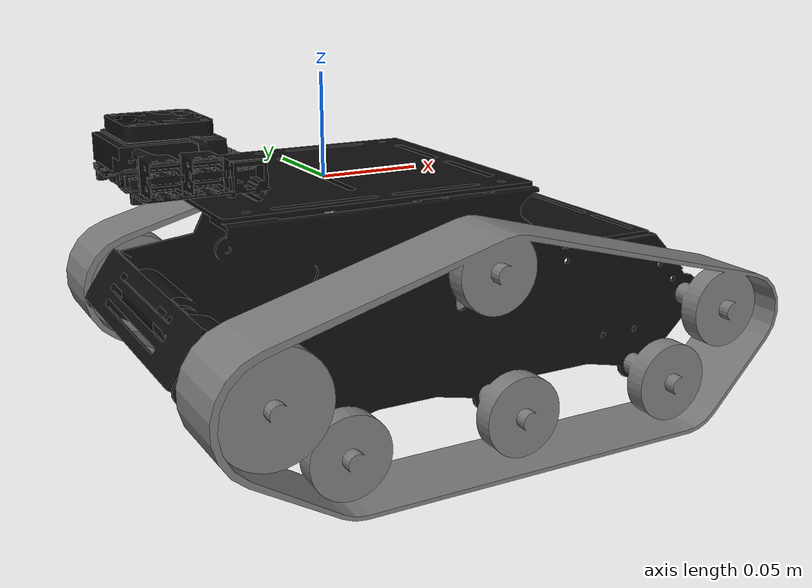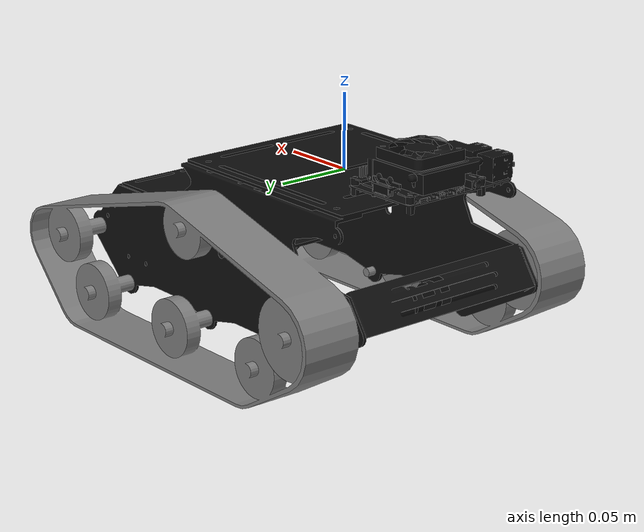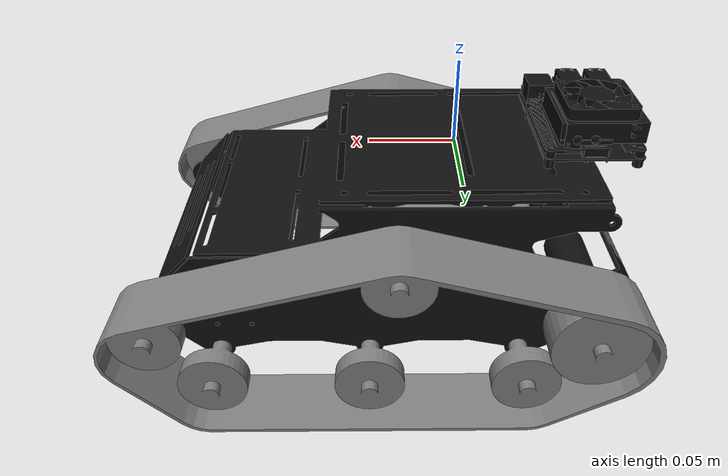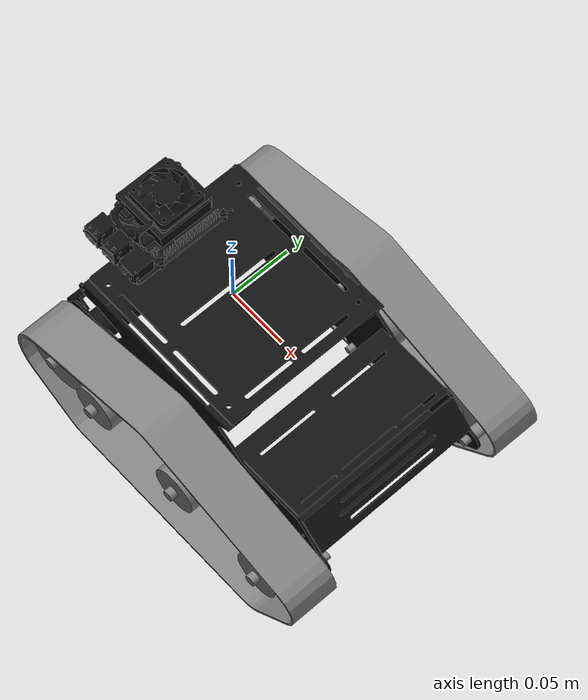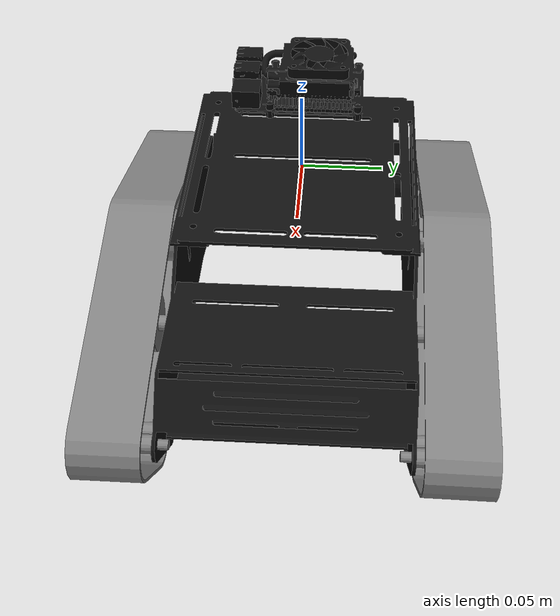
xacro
<?xml version="1.0"?>
<robot xmlns:xacro="http://www.ros.org/wiki/xacro">

    <xacro:property name="chassis_length" value="0.335" />
    <xacro:property name="chassis_width" value="0.265" />
    <xacro:property name="chassis_height" value="0.138" />
    <xacro:property name="chassis_mass" value="1.0" />
    <xacro:property name="wheel_radius" value="0.033" />
    <xacro:property name="wheel_thickness" value="0.026" />
    <xacro:property name="wheel_mass" value="0.05" />
    <xacro:property name="wheel_offset_x" value="0.226" />
    <xacro:property name="wheel_offset_y" value="0.1485" />
    <xacro:property name="wheel_offset_z" value="0.01" />
    <xacro:property name="caster_wheel_radius" value="0.01" />
    <xacro:property name="caster_wheel_mass" value="0.01" />
    <xacro:property name="caster_wheel_offset_x" value="0.075" />
    <xacro:property name="caster_wheel_offset_z"
        value="${wheel_offset_z - wheel_radius + caster_wheel_radius}" />

    <material name="white">
        <color rgba="1 1 1 1" />
    </material>

    <material name="orange">
        <color rgba="1 0.3 0.1 1" />
    </material>

    <material name="blue">
        <color rgba="0.2 0.2 1 1" />
    </material>

    <material name="black">
        <color rgba="0 0 0 1" />
    </material>

    <material name="red">
        <color rgba="1 0 0 1" />
    </material>

    <!-- BASE LINK -->

    <link name="base_link">

    </link>

    <!-- BASE_FOOTPRINT LINK -->

    <joint name="base_footprint_joint" type="fixed">
        <parent link="base_link" />
        <child link="base_footprint" />
        <origin xyz="0 0 -0.11948" rpy="0 0 0" />
        <axis xyz="0.0039682 -0.99999 0" />
    </joint>

    <link name="base_footprint">
        <inertial>
            <origin
                xyz="0.055623 -1.1796E-16 0.046481"
                rpy="0 0 0" />
            <mass
                value="0.33106" />
            <inertia
                ixx="0.00024841"
                ixy="1.9554E-18"
                ixz="2.9769E-05"
                iyy="0.0012783"
                iyz="2.1955E-19"
                izz="0.001084" />
        </inertial>
        <visual>
            <origin xyz="0 0 0" rpy="0 0 0" />
            <geometry>
                <mesh filename="package://halfonso_v2/meshes/base_footprint.stl" />
            </geometry>
            <material
                name="">
                <color rgba="0.49804 0.49804 0.49804 1" />
            </material>
        </visual>

        <collision>
            <origin xyz="0 0 0" rpy="0 0 0" />
            <geometry>
                <mesh filename="package://halfonso_v2/meshes/base_footprint.stl" />
            </geometry>
        </collision>
    </link>

    <!-- CHASSIS LINK -->

    <joint name="chassis_joint" type="fixed">
        <parent link="base_link" />
        <child link="chassis" />
        <origin xyz="0 0 0" />
    </joint>

    <link name="chassis">
        <inertial>
            <origin
                xyz="0.00062538 0.011608 -0.03299"
                rpy="0 0 0" />
            <mass
                value="0.42011" />
            <inertia
                ixx="0.00041367"
                ixy="5.996E-07"
                ixz="5.5589E-05"
                iyy="0.0010659"
                iyz="1.7009E-06"
                izz="0.0012337" />
        </inertial>
        <visual>
            <origin xyz="0 0 0" rpy="0 0 0" />
            <geometry>
                <mesh filename="package://halfonso_v2/meshes/base_link.stl" />
            </geometry>
            <material
                name="">
                <color
                    rgba="0.058824 0.058824 0.058824 1" />
            </material>
        </visual>

        <collision>
            <origin xyz="0 0 0" rpy="0 0 0" />
            <geometry>
                <mesh filename="package://halfonso_v2/meshes/base_link.stl" />
            </geometry>
        </collision>
    </link>

    <gazebo reference="chassis">
        <material>Gazebo/Orange</material>
    </gazebo>

    <!-- LEFT WHEEL LINK -->

    <joint name="left_wheel_joint" type="continuous">
        <parent link="base_link" />
        <child link="left_wheel" />
        <origin xyz="-0.071606 0.10612 -0.067079" rpy="1.5708 0 -0.0039682" />
        <axis xyz="0 0 -1" />
    </joint>

    <link name="left_wheel">
        <inertial>
            <origin
                xyz="6.2486E-11 -1.6653E-16 0.011068"
                rpy="0 0 0" />
            <mass
                value="0.049265" />
            <inertia
                ixx="1.07E-05"
                ixy="-6.8378E-22"
                ixz="9.1982E-22"
                iyy="1.07E-05"
                iyz="1.2891E-19"
                izz="1.6785E-05" />
        </inertial>
        <visual>
            <origin xyz="0 0 0" rpy="0 0 0" />
            <geometry>
                <mesh filename="package://halfonso_v2/meshes/left_wheel.stl" />
            </geometry>
            <material name="">
                <color rgba="0.49804 0.49804 0.49804 1" />
            </material>
        </visual>
        <collision>
            <origin xyz="0 0 0" rpy="0 0 0" />
            <geometry>
                <mesh filename="package://halfonso_v2/meshes/left_wheel.stl" />
            </geometry>
        </collision>
    </link>

    <gazebo reference="left_wheel">
        <material>Gazebo/Blue</material>
    </gazebo>

    <!-- RIGHT WHEEL LINK -->

    <joint name="right_wheel_joint" type="continuous">
        <parent link="base_link" />
        <child link="right_wheel" />
        <origin xyz="-0.071606 -0.10612 -0.067079" rpy="-1.5708 0 0.0039682" />
        <axis xyz="0.0079364 0 0.99997" />
    </joint>

    <link name="right_wheel">
        <inertial>
            <origin
                xyz="-2.7756E-17 1.7347E-16 0.011068"
                rpy="0 0 0" />
            <mass
                value="0.049265" />
            <inertia
                ixx="1.07E-05"
                ixy="-6.5289E-22"
                ixz="-1.2672E-21"
                iyy="1.07E-05"
                iyz="-1.2917E-19"
                izz="1.6785E-05" />
        </inertial>
        <visual>
            <origin xyz="0 0 0" rpy="0 0 0" />
            <geometry>
                <mesh filename="package://halfonso_v2/meshes/right_wheel.stl" />
            </geometry>
            <material name="">
                <color rgba="0.49804 0.49804 0.49804 1" />
            </material>
        </visual>
        <collision>
            <origin xyz="0 0 0" rpy="0 0 0" />
            <geometry>
                <mesh filename="package://halfonso_v2/meshes/right_wheel.stl" />
            </geometry>
        </collision>
    </link>

    <gazebo reference="right_wheel">
        <material>Gazebo/Blue</material>
    </gazebo>

    <!-- CASTER WHEEL LINK -->

</robot>
